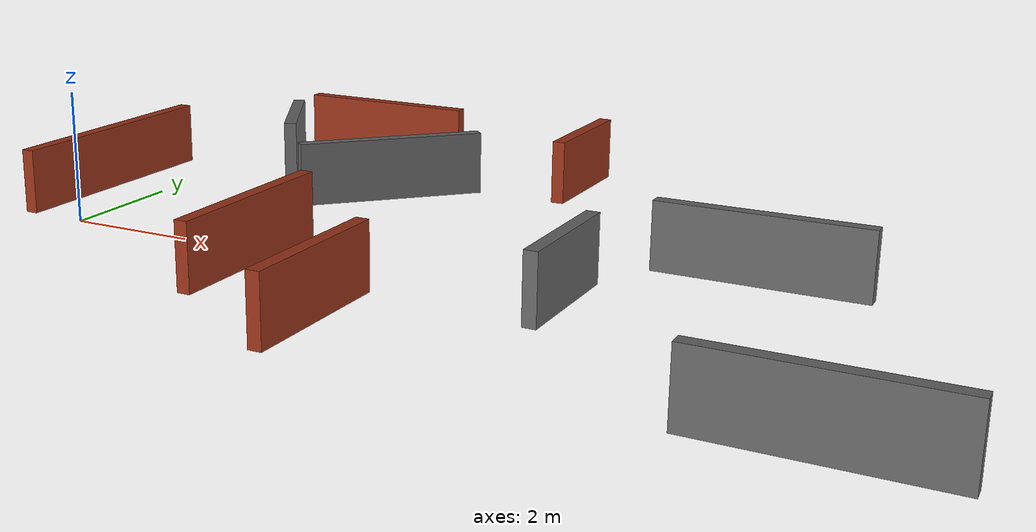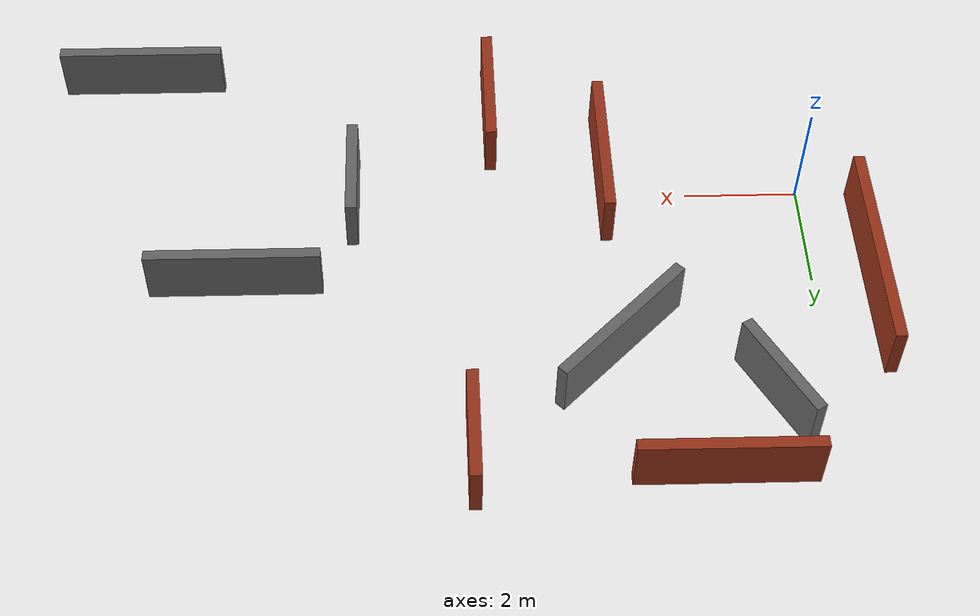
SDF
<?xml version="1.0" ?>
<sdf version="1.9">
  <model name="complex_walls">
    <static>true</static>

    <link name="wall_1">
      <pose>3.5 3.5 0.5 0 0 -0.785</pose>
      <collision name="col">
        <geometry><box><size>0.2 3.0 1.0</size></box></geometry>
      </collision>
      <visual name="vis">
        <geometry><box><size>0.2 3.0 1.0</size></box></geometry>
        <material>
          <ambient>0.4 0.4 0.4 1</ambient>
          <diffuse>0.4 0.4 0.4 1</diffuse>
          <specular>0.1 0.1 0.1 1</specular>
          <pbr>
            <metal><roughness>0.9</roughness><metalness>0.0</metalness></metal>
          </pbr>
        </material>
      </visual>
    </link>

    <link name="wall_2">
      <pose>3.5 -0.5 0.5 0 0 0</pose>
      <collision name="col">
        <geometry><box><size>0.2 3.0 1.0</size></box></geometry>
      </collision>
      <visual name="vis">
        <geometry><box><size>0.2 3.0 1.0</size></box></geometry>
        <material>
          <ambient>0.6 0.2 0.1 1</ambient> <diffuse>0.6 0.2 0.1 1</diffuse>
          <specular>0.05 0.05 0.05 1</specular>
          <pbr>
            <metal><roughness>1.0</roughness><metalness>0.0</metalness></metal>
          </pbr>
        </material>
      </visual>
    </link>

    <link name="wall_3">
      <pose>10.0 2.0 0.5 0 0 1.57</pose>
      <collision name="col">
        <geometry><box><size>0.2 3.0 1.0</size></box></geometry>
      </collision>
      <visual name="vis">
        <geometry><box><size>0.2 3.0 1.0</size></box></geometry>
        <material>
          <ambient>0.4 0.4 0.4 1</ambient>
          <diffuse>0.4 0.4 0.4 1</diffuse>
          <pbr><metal><roughness>0.9</roughness></metal></pbr>
        </material>
      </visual>
    </link>

    <link name="wall_4">
      <pose>5.5 -2.0 0.5 0 0 0</pose>
      <collision name="col">
        <geometry><box><size>0.2 2.5 1.0</size></box></geometry>
      </collision>
      <visual name="vis">
        <geometry><box><size>0.2 2.5 1.0</size></box></geometry>
        <material>
          <ambient>0.6 0.2 0.1 1</ambient>
          <diffuse>0.6 0.2 0.1 1</diffuse>
          <pbr><metal><roughness>1.0</roughness></metal></pbr>
        </material>
      </visual>
    </link>

    <link name="wall_5">
      <pose>1.0 4.5 0.5 0 0 0.5</pose>
      <collision name="col">
        <geometry><box><size>0.2 2.0 1.0</size></box></geometry>
      </collision>
      <visual name="vis">
        <geometry><box><size>0.2 2.0 1.0</size></box></geometry>
        <material>
          <ambient>0.4 0.4 0.4 1</ambient>
          <diffuse>0.4 0.4 0.4 1</diffuse>
          <pbr><metal><roughness>0.9</roughness></metal></pbr>
        </material>
      </visual>
    </link>

    <link name="wall_6">
      <pose>6.0 5.5 0.5 0 0 0</pose>
      <collision name="col">
        <geometry><box><size>0.2 2.0 1.0</size></box></geometry>
      </collision>
      <visual name="vis">
        <geometry><box><size>0.2 2.0 1.0</size></box></geometry>
        <material>
          <ambient>0.6 0.2 0.1 1</ambient>
          <diffuse>0.6 0.2 0.1 1</diffuse>
          <pbr><metal><roughness>1.0</roughness></metal></pbr>
        </material>
      </visual>
    </link>

    <link name="wall_7">
      <pose>12.0 -3.0 0.5 0 0 1.57</pose>
      <collision name="col">
        <geometry><box><size>0.2 3.0 1.0</size></box></geometry>
      </collision>
      <visual name="vis">
        <geometry><box><size>0.2 3.0 1.0</size></box></geometry>
        <material>
          <ambient>0.4 0.4 0.4 1</ambient>
          <diffuse>0.4 0.4 0.4 1</diffuse>
          <pbr><metal><roughness>0.9</roughness></metal></pbr>
        </material>
      </visual>
    </link>

    <link name="wall_8">
      <pose>-1.0 2.0 0.5 0 0 0</pose>
      <collision name="col">
        <geometry><box><size>0.2 4.0 1.0</size></box></geometry>
      </collision>
      <visual name="vis">
        <geometry><box><size>0.2 4.0 1.0</size></box></geometry>
        <material>
          <ambient>0.6 0.2 0.1 1</ambient>
          <diffuse>0.6 0.2 0.1 1</diffuse>
          <pbr><metal><roughness>1.0</roughness></metal></pbr>
        </material>
      </visual>
    </link>

    <link name="wall_9">
      <pose>8.0 0.0 0.5 0 0 0</pose>
      <collision name="col">
        <geometry><box><size>0.2 2.0 1.0</size></box></geometry>
      </collision>
      <visual name="vis">
        <geometry><box><size>0.2 2.0 1.0</size></box></geometry>
        <material>
          <ambient>0.4 0.4 0.4 1</ambient>
          <diffuse>0.4 0.4 0.4 1</diffuse>
          <pbr><metal><roughness>0.9</roughness></metal></pbr>
        </material>
      </visual>
    </link>

    <link name="wall_10">
      <pose>2.0 6.0 0.5 0 0 1.57</pose>
      <collision name="col">
        <geometry><box><size>0.2 3.0 1.0</size></box></geometry>
      </collision>
      <visual name="vis">
        <geometry><box><size>0.2 3.0 1.0</size></box></geometry>
        <material>
          <ambient>0.6 0.2 0.1 1</ambient>
          <diffuse>0.6 0.2 0.1 1</diffuse>
          <pbr><metal><roughness>1.0</roughness></metal></pbr>
        </material>
      </visual>
    </link>

  </model>
</sdf>
